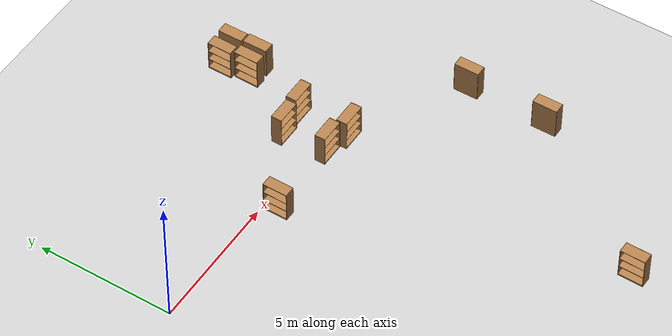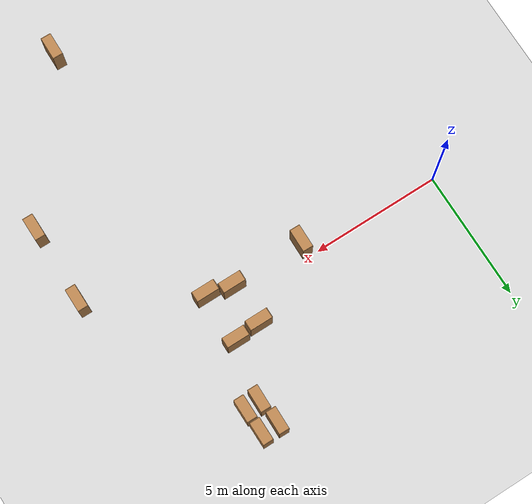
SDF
<sdf version="1.6">
 <world name="default">
  <model name="ground_plane">
   <static>1</static>
   <link name="link">
    <collision name="collision">
     <geometry><plane><normal>0 0 1</normal><size>100 100</size></plane></geometry>
     <surface>
      <contact><collide_bitmask>65535</collide_bitmask></contact>
      <friction><ode><mu>100</mu><mu2>50</mu2></ode></friction>
     </surface>
    </collision>
    <visual name="visual">
     <cast_shadows>0</cast_shadows>
     <geometry><plane><normal>0 0 1</normal><size>100 100</size></plane></geometry>
     <material>
      <script><uri>file://media/materials/scripts/gazebo.material</uri><name>Gazebo/Grey</name></script>
     </material>
    </visual>
   </link>
  </model>
  <model name="30x30env"><static>0</static><pose>32.1206 3.39752 0 0 -0 0</pose></model>
  <model name="bookshelf_clone_0_clone_clone_2_clone_2_clone_3_clone">
   <static>1</static>
   <link name="link">
    <inertial><mass>1</mass></inertial>
    <collision name="back">
     <pose>0 0.005 0.6 0 -0 0</pose>
     <geometry><box><size>0.9 0.01 1.2</size></box></geometry>
    </collision>
    <visual name="visual1">
     <pose>0 0.005 0.6 0 -0 0</pose>
     <geometry><box><size>0.9 0.01 1.2</size></box></geometry>
     <material>
      <script><uri>file://media/materials/scripts/gazebo.material</uri><name>Gazebo/Wood</name></script>
     </material>
    </visual>
    <collision name="left_side">
     <pose>0.45 -0.195 0.6 0 -0 0</pose>
     <geometry><box><size>0.02 0.4 1.2</size></box></geometry>
    </collision>
    <visual name="visual2">
     <pose>0.45 -0.195 0.6 0 -0 0</pose>
     <geometry><box><size>0.02 0.4 1.2</size></box></geometry>
     <material>
      <script><uri>file://media/materials/scripts/gazebo.material</uri><name>Gazebo/Wood</name></script>
     </material>
    </visual>
    <collision name="right_side">
     <pose>-0.45 -0.195 0.6 0 -0 0</pose>
     <geometry><box><size>0.02 0.4 1.2</size></box></geometry>
    </collision>
    <visual name="visual3">
     <pose>-0.45 -0.195 0.6 0 -0 0</pose>
     <geometry><box><size>0.02 0.4 1.2</size></box></geometry>
     <material>
      <script><uri>file://media/materials/scripts/gazebo.material</uri><name>Gazebo/Wood</name></script>
     </material>
    </visual>
    <collision name="bottom">
     <pose>0 -0.195 0.03 0 -0 0</pose>
     <geometry><box><size>0.88 0.4 0.06</size></box></geometry>
    </collision>
    <visual name="visual4">
     <pose>0 -0.195 0.03 0 -0 0</pose>
     <geometry><box><size>0.88 0.4 0.06</size></box></geometry>
     <material>
      <script><uri>file://media/materials/scripts/gazebo.material</uri><name>Gazebo/Wood</name></script>
     </material>
    </visual>
    <collision name="top">
     <pose>0 -0.195 1.19 0 -0 0</pose>
     <geometry><box><size>0.88 0.4 0.02</size></box></geometry>
    </collision>
    <visual name="visual5">
     <pose>0 -0.195 1.19 0 -0 0</pose>
     <geometry><box><size>0.88 0.4 0.02</size></box></geometry>
     <material>
      <script><uri>file://media/materials/scripts/gazebo.material</uri><name>Gazebo/Wood</name></script>
     </material>
    </visual>
    <collision name="low_shelf">
     <pose>0 -0.195 0.43 0 -0 0</pose>
     <geometry><box><size>0.88 0.4 0.02</size></box></geometry>
    </collision>
    <visual name="visual6">
     <pose>0 -0.195 0.43 0 -0 0</pose>
     <geometry><box><size>0.88 0.4 0.02</size></box></geometry>
     <material>
      <script><uri>file://media/materials/scripts/gazebo.material</uri><name>Gazebo/Wood</name></script>
     </material>
    </visual>
    <collision name="high_shelf">
     <pose>0 -0.195 0.8 0 -0 0</pose>
     <geometry><box><size>0.88 0.4 0.02</size></box></geometry>
    </collision>
    <visual name="visual7">
     <pose>0 -0.195 0.8 0 -0 0</pose>
     <geometry><box><size>0.88 0.4 0.02</size></box></geometry>
     <material>
      <script><uri>file://media/materials/scripts/gazebo.material</uri><name>Gazebo/Wood</name></script>
     </material>
    </visual>
   </link>
   <pose>10.0651 4.47508 0 0 -0 1.57201</pose>
  </model>
  <model name="bookshelf_clone_0_clone_clone_2_clone_2_clone_3_clone_0">
   <static>1</static>
   <link name="link">
    <inertial><mass>1</mass></inertial>
    <collision name="back">
     <pose>0 0.005 0.6 0 -0 0</pose>
     <geometry><box><size>0.9 0.01 1.2</size></box></geometry>
    </collision>
    <visual name="visual1">
     <pose>0 0.005 0.6 0 -0 0</pose>
     <geometry><box><size>0.9 0.01 1.2</size></box></geometry>
     <material>
      <script><uri>file://media/materials/scripts/gazebo.material</uri><name>Gazebo/Wood</name></script>
     </material>
    </visual>
    <collision name="left_side">
     <pose>0.45 -0.195 0.6 0 -0 0</pose>
     <geometry><box><size>0.02 0.4 1.2</size></box></geometry>
    </collision>
    <visual name="visual2">
     <pose>0.45 -0.195 0.6 0 -0 0</pose>
     <geometry><box><size>0.02 0.4 1.2</size></box></geometry>
     <material>
      <script><uri>file://media/materials/scripts/gazebo.material</uri><name>Gazebo/Wood</name></script>
     </material>
    </visual>
    <collision name="right_side">
     <pose>-0.45 -0.195 0.6 0 -0 0</pose>
     <geometry><box><size>0.02 0.4 1.2</size></box></geometry>
    </collision>
    <visual name="visual3">
     <pose>-0.45 -0.195 0.6 0 -0 0</pose>
     <geometry><box><size>0.02 0.4 1.2</size></box></geometry>
     <material>
      <script><uri>file://media/materials/scripts/gazebo.material</uri><name>Gazebo/Wood</name></script>
     </material>
    </visual>
    <collision name="bottom">
     <pose>0 -0.195 0.03 0 -0 0</pose>
     <geometry><box><size>0.88 0.4 0.06</size></box></geometry>
    </collision>
    <visual name="visual4">
     <pose>0 -0.195 0.03 0 -0 0</pose>
     <geometry><box><size>0.88 0.4 0.06</size></box></geometry>
     <material>
      <script><uri>file://media/materials/scripts/gazebo.material</uri><name>Gazebo/Wood</name></script>
     </material>
    </visual>
    <collision name="top">
     <pose>0 -0.195 1.19 0 -0 0</pose>
     <geometry><box><size>0.88 0.4 0.02</size></box></geometry>
    </collision>
    <visual name="visual5">
     <pose>0 -0.195 1.19 0 -0 0</pose>
     <geometry><box><size>0.88 0.4 0.02</size></box></geometry>
     <material>
      <script><uri>file://media/materials/scripts/gazebo.material</uri><name>Gazebo/Wood</name></script>
     </material>
    </visual>
    <collision name="low_shelf">
     <pose>0 -0.195 0.43 0 -0 0</pose>
     <geometry><box><size>0.88 0.4 0.02</size></box></geometry>
    </collision>
    <visual name="visual6">
     <pose>0 -0.195 0.43 0 -0 0</pose>
     <geometry><box><size>0.88 0.4 0.02</size></box></geometry>
     <material>
      <script><uri>file://media/materials/scripts/gazebo.material</uri><name>Gazebo/Wood</name></script>
     </material>
    </visual>
    <collision name="high_shelf">
     <pose>0 -0.195 0.8 0 -0 0</pose>
     <geometry><box><size>0.88 0.4 0.02</size></box></geometry>
    </collision>
    <visual name="visual7">
     <pose>0 -0.195 0.8 0 -0 0</pose>
     <geometry><box><size>0.88 0.4 0.02</size></box></geometry>
     <material>
      <script><uri>file://media/materials/scripts/gazebo.material</uri><name>Gazebo/Wood</name></script>
     </material>
    </visual>
   </link>
   <pose>9.78478 4.45442 0 0 0 -1.58271</pose>
  </model>
  <model name="bookshelf_clone_0_clone_clone_2_clone_2_clone_3_clone_clone">
   <static>1</static>
   <link name="link">
    <inertial><mass>1</mass></inertial>
    <collision name="back">
     <pose>0 0.005 0.6 0 -0 0</pose>
     <geometry><box><size>0.9 0.01 1.2</size></box></geometry>
    </collision>
    <visual name="visual1">
     <pose>0 0.005 0.6 0 -0 0</pose>
     <geometry><box><size>0.9 0.01 1.2</size></box></geometry>
     <material>
      <script><uri>file://media/materials/scripts/gazebo.material</uri><name>Gazebo/Wood</name></script>
     </material>
    </visual>
    <collision name="left_side">
     <pose>0.45 -0.195 0.6 0 -0 0</pose>
     <geometry><box><size>0.02 0.4 1.2</size></box></geometry>
    </collision>
    <visual name="visual2">
     <pose>0.45 -0.195 0.6 0 -0 0</pose>
     <geometry><box><size>0.02 0.4 1.2</size></box></geometry>
     <material>
      <script><uri>file://media/materials/scripts/gazebo.material</uri><name>Gazebo/Wood</name></script>
     </material>
    </visual>
    <collision name="right_side">
     <pose>-0.45 -0.195 0.6 0 -0 0</pose>
     <geometry><box><size>0.02 0.4 1.2</size></box></geometry>
    </collision>
    <visual name="visual3">
     <pose>-0.45 -0.195 0.6 0 -0 0</pose>
     <geometry><box><size>0.02 0.4 1.2</size></box></geometry>
     <material>
      <script><uri>file://media/materials/scripts/gazebo.material</uri><name>Gazebo/Wood</name></script>
     </material>
    </visual>
    <collision name="bottom">
     <pose>0 -0.195 0.03 0 -0 0</pose>
     <geometry><box><size>0.88 0.4 0.06</size></box></geometry>
    </collision>
    <visual name="visual4">
     <pose>0 -0.195 0.03 0 -0 0</pose>
     <geometry><box><size>0.88 0.4 0.06</size></box></geometry>
     <material>
      <script><uri>file://media/materials/scripts/gazebo.material</uri><name>Gazebo/Wood</name></script>
     </material>
    </visual>
    <collision name="top">
     <pose>0 -0.195 1.19 0 -0 0</pose>
     <geometry><box><size>0.88 0.4 0.02</size></box></geometry>
    </collision>
    <visual name="visual5">
     <pose>0 -0.195 1.19 0 -0 0</pose>
     <geometry><box><size>0.88 0.4 0.02</size></box></geometry>
     <material>
      <script><uri>file://media/materials/scripts/gazebo.material</uri><name>Gazebo/Wood</name></script>
     </material>
    </visual>
    <collision name="low_shelf">
     <pose>0 -0.195 0.43 0 -0 0</pose>
     <geometry><box><size>0.88 0.4 0.02</size></box></geometry>
    </collision>
    <visual name="visual6">
     <pose>0 -0.195 0.43 0 -0 0</pose>
     <geometry><box><size>0.88 0.4 0.02</size></box></geometry>
     <material>
      <script><uri>file://media/materials/scripts/gazebo.material</uri><name>Gazebo/Wood</name></script>
     </material>
    </visual>
    <collision name="high_shelf">
     <pose>0 -0.195 0.8 0 -0 0</pose>
     <geometry><box><size>0.88 0.4 0.02</size></box></geometry>
    </collision>
    <visual name="visual7">
     <pose>0 -0.195 0.8 0 -0 0</pose>
     <geometry><box><size>0.88 0.4 0.02</size></box></geometry>
     <material>
      <script><uri>file://media/materials/scripts/gazebo.material</uri><name>Gazebo/Wood</name></script>
     </material>
    </visual>
   </link>
   <pose>10.1123 3.51864 0 0 -0 1.57201</pose>
  </model>
  <model name="bookshelf_clone_0_clone_clone_2_clone_2_clone_3_clone_0_clone">
   <static>1</static>
   <link name="link">
    <inertial><mass>1</mass></inertial>
    <collision name="back">
     <pose>0 0.005 0.6 0 -0 0</pose>
     <geometry><box><size>0.9 0.01 1.2</size></box></geometry>
    </collision>
    <visual name="visual1">
     <pose>0 0.005 0.6 0 -0 0</pose>
     <geometry><box><size>0.9 0.01 1.2</size></box></geometry>
     <material>
      <script><uri>file://media/materials/scripts/gazebo.material</uri><name>Gazebo/Wood</name></script>
     </material>
    </visual>
    <collision name="left_side">
     <pose>0.45 -0.195 0.6 0 -0 0</pose>
     <geometry><box><size>0.02 0.4 1.2</size></box></geometry>
    </collision>
    <visual name="visual2">
     <pose>0.45 -0.195 0.6 0 -0 0</pose>
     <geometry><box><size>0.02 0.4 1.2</size></box></geometry>
     <material>
      <script><uri>file://media/materials/scripts/gazebo.material</uri><name>Gazebo/Wood</name></script>
     </material>
    </visual>
    <collision name="right_side">
     <pose>-0.45 -0.195 0.6 0 -0 0</pose>
     <geometry><box><size>0.02 0.4 1.2</size></box></geometry>
    </collision>
    <visual name="visual3">
     <pose>-0.45 -0.195 0.6 0 -0 0</pose>
     <geometry><box><size>0.02 0.4 1.2</size></box></geometry>
     <material>
      <script><uri>file://media/materials/scripts/gazebo.material</uri><name>Gazebo/Wood</name></script>
     </material>
    </visual>
    <collision name="bottom">
     <pose>0 -0.195 0.03 0 -0 0</pose>
     <geometry><box><size>0.88 0.4 0.06</size></box></geometry>
    </collision>
    <visual name="visual4">
     <pose>0 -0.195 0.03 0 -0 0</pose>
     <geometry><box><size>0.88 0.4 0.06</size></box></geometry>
     <material>
      <script><uri>file://media/materials/scripts/gazebo.material</uri><name>Gazebo/Wood</name></script>
     </material>
    </visual>
    <collision name="top">
     <pose>0 -0.195 1.19 0 -0 0</pose>
     <geometry><box><size>0.88 0.4 0.02</size></box></geometry>
    </collision>
    <visual name="visual5">
     <pose>0 -0.195 1.19 0 -0 0</pose>
     <geometry><box><size>0.88 0.4 0.02</size></box></geometry>
     <material>
      <script><uri>file://media/materials/scripts/gazebo.material</uri><name>Gazebo/Wood</name></script>
     </material>
    </visual>
    <collision name="low_shelf">
     <pose>0 -0.195 0.43 0 -0 0</pose>
     <geometry><box><size>0.88 0.4 0.02</size></box></geometry>
    </collision>
    <visual name="visual6">
     <pose>0 -0.195 0.43 0 -0 0</pose>
     <geometry><box><size>0.88 0.4 0.02</size></box></geometry>
     <material>
      <script><uri>file://media/materials/scripts/gazebo.material</uri><name>Gazebo/Wood</name></script>
     </material>
    </visual>
    <collision name="high_shelf">
     <pose>0 -0.195 0.8 0 -0 0</pose>
     <geometry><box><size>0.88 0.4 0.02</size></box></geometry>
    </collision>
    <visual name="visual7">
     <pose>0 -0.195 0.8 0 -0 0</pose>
     <geometry><box><size>0.88 0.4 0.02</size></box></geometry>
     <material>
      <script><uri>file://media/materials/scripts/gazebo.material</uri><name>Gazebo/Wood</name></script>
     </material>
    </visual>
   </link>
   <pose>9.90979 3.47613 0 0 0 -1.58271</pose>
  </model>
  <model name="bookshelf_clone_clone_clone_0_clone_0_clone_3_clone">
   <static>1</static>
   <link name="link">
    <inertial><mass>1</mass></inertial>
    <collision name="back">
     <pose>0 0.005 0.6 0 -0 0</pose>
     <geometry><box><size>0.9 0.01 1.2</size></box></geometry>
    </collision>
    <visual name="visual1">
     <pose>0 0.005 0.6 0 -0 0</pose>
     <geometry><box><size>0.9 0.01 1.2</size></box></geometry>
     <material>
      <script><uri>file://media/materials/scripts/gazebo.material</uri><name>Gazebo/Wood</name></script>
     </material>
    </visual>
    <collision name="left_side">
     <pose>0.45 -0.195 0.6 0 -0 0</pose>
     <geometry><box><size>0.02 0.4 1.2</size></box></geometry>
    </collision>
    <visual name="visual2">
     <pose>0.45 -0.195 0.6 0 -0 0</pose>
     <geometry><box><size>0.02 0.4 1.2</size></box></geometry>
     <material>
      <script><uri>file://media/materials/scripts/gazebo.material</uri><name>Gazebo/Wood</name></script>
     </material>
    </visual>
    <collision name="right_side">
     <pose>-0.45 -0.195 0.6 0 -0 0</pose>
     <geometry><box><size>0.02 0.4 1.2</size></box></geometry>
    </collision>
    <visual name="visual3">
     <pose>-0.45 -0.195 0.6 0 -0 0</pose>
     <geometry><box><size>0.02 0.4 1.2</size></box></geometry>
     <material>
      <script><uri>file://media/materials/scripts/gazebo.material</uri><name>Gazebo/Wood</name></script>
     </material>
    </visual>
    <collision name="bottom">
     <pose>0 -0.195 0.03 0 -0 0</pose>
     <geometry><box><size>0.88 0.4 0.06</size></box></geometry>
    </collision>
    <visual name="visual4">
     <pose>0 -0.195 0.03 0 -0 0</pose>
     <geometry><box><size>0.88 0.4 0.06</size></box></geometry>
     <material>
      <script><uri>file://media/materials/scripts/gazebo.material</uri><name>Gazebo/Wood</name></script>
     </material>
    </visual>
    <collision name="top">
     <pose>0 -0.195 1.19 0 -0 0</pose>
     <geometry><box><size>0.88 0.4 0.02</size></box></geometry>
    </collision>
    <visual name="visual5">
     <pose>0 -0.195 1.19 0 -0 0</pose>
     <geometry><box><size>0.88 0.4 0.02</size></box></geometry>
     <material>
      <script><uri>file://media/materials/scripts/gazebo.material</uri><name>Gazebo/Wood</name></script>
     </material>
    </visual>
    <collision name="low_shelf">
     <pose>0 -0.195 0.43 0 -0 0</pose>
     <geometry><box><size>0.88 0.4 0.02</size></box></geometry>
    </collision>
    <visual name="visual6">
     <pose>0 -0.195 0.43 0 -0 0</pose>
     <geometry><box><size>0.88 0.4 0.02</size></box></geometry>
     <material>
      <script><uri>file://media/materials/scripts/gazebo.material</uri><name>Gazebo/Wood</name></script>
     </material>
    </visual>
    <collision name="high_shelf">
     <pose>0 -0.195 0.8 0 -0 0</pose>
     <geometry><box><size>0.88 0.4 0.02</size></box></geometry>
    </collision>
    <visual name="visual7">
     <pose>0 -0.195 0.8 0 -0 0</pose>
     <geometry><box><size>0.88 0.4 0.02</size></box></geometry>
     <material>
      <script><uri>file://media/materials/scripts/gazebo.material</uri><name>Gazebo/Wood</name></script>
     </material>
    </visual>
   </link>
   <pose>9.24814 1.3976 0 0 -0 0</pose>
  </model>
  <model name="bookshelf_clone_clone_clone_0_clone_0_clone_3_clone_0">
   <static>1</static>
   <link name="link">
    <inertial><mass>1</mass></inertial>
    <collision name="back">
     <pose>0 0.005 0.6 0 -0 0</pose>
     <geometry><box><size>0.9 0.01 1.2</size></box></geometry>
    </collision>
    <visual name="visual1">
     <pose>0 0.005 0.6 0 -0 0</pose>
     <geometry><box><size>0.9 0.01 1.2</size></box></geometry>
     <material>
      <script><uri>file://media/materials/scripts/gazebo.material</uri><name>Gazebo/Wood</name></script>
     </material>
    </visual>
    <collision name="left_side">
     <pose>0.45 -0.195 0.6 0 -0 0</pose>
     <geometry><box><size>0.02 0.4 1.2</size></box></geometry>
    </collision>
    <visual name="visual2">
     <pose>0.45 -0.195 0.6 0 -0 0</pose>
     <geometry><box><size>0.02 0.4 1.2</size></box></geometry>
     <material>
      <script><uri>file://media/materials/scripts/gazebo.material</uri><name>Gazebo/Wood</name></script>
     </material>
    </visual>
    <collision name="right_side">
     <pose>-0.45 -0.195 0.6 0 -0 0</pose>
     <geometry><box><size>0.02 0.4 1.2</size></box></geometry>
    </collision>
    <visual name="visual3">
     <pose>-0.45 -0.195 0.6 0 -0 0</pose>
     <geometry><box><size>0.02 0.4 1.2</size></box></geometry>
     <material>
      <script><uri>file://media/materials/scripts/gazebo.material</uri><name>Gazebo/Wood</name></script>
     </material>
    </visual>
    <collision name="bottom">
     <pose>0 -0.195 0.03 0 -0 0</pose>
     <geometry><box><size>0.88 0.4 0.06</size></box></geometry>
    </collision>
    <visual name="visual4">
     <pose>0 -0.195 0.03 0 -0 0</pose>
     <geometry><box><size>0.88 0.4 0.06</size></box></geometry>
     <material>
      <script><uri>file://media/materials/scripts/gazebo.material</uri><name>Gazebo/Wood</name></script>
     </material>
    </visual>
    <collision name="top">
     <pose>0 -0.195 1.19 0 -0 0</pose>
     <geometry><box><size>0.88 0.4 0.02</size></box></geometry>
    </collision>
    <visual name="visual5">
     <pose>0 -0.195 1.19 0 -0 0</pose>
     <geometry><box><size>0.88 0.4 0.02</size></box></geometry>
     <material>
      <script><uri>file://media/materials/scripts/gazebo.material</uri><name>Gazebo/Wood</name></script>
     </material>
    </visual>
    <collision name="low_shelf">
     <pose>0 -0.195 0.43 0 -0 0</pose>
     <geometry><box><size>0.88 0.4 0.02</size></box></geometry>
    </collision>
    <visual name="visual6">
     <pose>0 -0.195 0.43 0 -0 0</pose>
     <geometry><box><size>0.88 0.4 0.02</size></box></geometry>
     <material>
      <script><uri>file://media/materials/scripts/gazebo.material</uri><name>Gazebo/Wood</name></script>
     </material>
    </visual>
    <collision name="high_shelf">
     <pose>0 -0.195 0.8 0 -0 0</pose>
     <geometry><box><size>0.88 0.4 0.02</size></box></geometry>
    </collision>
    <visual name="visual7">
     <pose>0 -0.195 0.8 0 -0 0</pose>
     <geometry><box><size>0.88 0.4 0.02</size></box></geometry>
     <material>
      <script><uri>file://media/materials/scripts/gazebo.material</uri><name>Gazebo/Wood</name></script>
     </material>
    </visual>
   </link>
   <pose>9.27582 -0.555469 0 0 -0 0</pose>
  </model>
  <model name="bookshelf_clone_clone_clone_0_clone_0_clone_3_clone_1">
   <static>1</static>
   <link name="link">
    <inertial><mass>1</mass></inertial>
    <collision name="back">
     <pose>0 0.005 0.6 0 -0 0</pose>
     <geometry><box><size>0.9 0.01 1.2</size></box></geometry>
    </collision>
    <visual name="visual1">
     <pose>0 0.005 0.6 0 -0 0</pose>
     <geometry><box><size>0.9 0.01 1.2</size></box></geometry>
     <material>
      <script><uri>file://media/materials/scripts/gazebo.material</uri><name>Gazebo/Wood</name></script>
     </material>
    </visual>
    <collision name="left_side">
     <pose>0.45 -0.195 0.6 0 -0 0</pose>
     <geometry><box><size>0.02 0.4 1.2</size></box></geometry>
    </collision>
    <visual name="visual2">
     <pose>0.45 -0.195 0.6 0 -0 0</pose>
     <geometry><box><size>0.02 0.4 1.2</size></box></geometry>
     <material>
      <script><uri>file://media/materials/scripts/gazebo.material</uri><name>Gazebo/Wood</name></script>
     </material>
    </visual>
    <collision name="right_side">
     <pose>-0.45 -0.195 0.6 0 -0 0</pose>
     <geometry><box><size>0.02 0.4 1.2</size></box></geometry>
    </collision>
    <visual name="visual3">
     <pose>-0.45 -0.195 0.6 0 -0 0</pose>
     <geometry><box><size>0.02 0.4 1.2</size></box></geometry>
     <material>
      <script><uri>file://media/materials/scripts/gazebo.material</uri><name>Gazebo/Wood</name></script>
     </material>
    </visual>
    <collision name="bottom">
     <pose>0 -0.195 0.03 0 -0 0</pose>
     <geometry><box><size>0.88 0.4 0.06</size></box></geometry>
    </collision>
    <visual name="visual4">
     <pose>0 -0.195 0.03 0 -0 0</pose>
     <geometry><box><size>0.88 0.4 0.06</size></box></geometry>
     <material>
      <script><uri>file://media/materials/scripts/gazebo.material</uri><name>Gazebo/Wood</name></script>
     </material>
    </visual>
    <collision name="top">
     <pose>0 -0.195 1.19 0 -0 0</pose>
     <geometry><box><size>0.88 0.4 0.02</size></box></geometry>
    </collision>
    <visual name="visual5">
     <pose>0 -0.195 1.19 0 -0 0</pose>
     <geometry><box><size>0.88 0.4 0.02</size></box></geometry>
     <material>
      <script><uri>file://media/materials/scripts/gazebo.material</uri><name>Gazebo/Wood</name></script>
     </material>
    </visual>
    <collision name="low_shelf">
     <pose>0 -0.195 0.43 0 -0 0</pose>
     <geometry><box><size>0.88 0.4 0.02</size></box></geometry>
    </collision>
    <visual name="visual6">
     <pose>0 -0.195 0.43 0 -0 0</pose>
     <geometry><box><size>0.88 0.4 0.02</size></box></geometry>
     <material>
      <script><uri>file://media/materials/scripts/gazebo.material</uri><name>Gazebo/Wood</name></script>
     </material>
    </visual>
    <collision name="high_shelf">
     <pose>0 -0.195 0.8 0 -0 0</pose>
     <geometry><box><size>0.88 0.4 0.02</size></box></geometry>
    </collision>
    <visual name="visual7">
     <pose>0 -0.195 0.8 0 -0 0</pose>
     <geometry><box><size>0.88 0.4 0.02</size></box></geometry>
     <material>
      <script><uri>file://media/materials/scripts/gazebo.material</uri><name>Gazebo/Wood</name></script>
     </material>
    </visual>
   </link>
   <pose>8.24441 1.31603 0 0 -0 0</pose>
  </model>
  <model name="bookshelf_clone_clone_clone_0_clone_0_clone_3_clone_2">
   <static>1</static>
   <link name="link">
    <inertial><mass>1</mass></inertial>
    <collision name="back">
     <pose>0 0.005 0.6 0 -0 0</pose>
     <geometry><box><size>0.9 0.01 1.2</size></box></geometry>
    </collision>
    <visual name="visual1">
     <pose>0 0.005 0.6 0 -0 0</pose>
     <geometry><box><size>0.9 0.01 1.2</size></box></geometry>
     <material>
      <script><uri>file://media/materials/scripts/gazebo.material</uri><name>Gazebo/Wood</name></script>
     </material>
    </visual>
    <collision name="left_side">
     <pose>0.45 -0.195 0.6 0 -0 0</pose>
     <geometry><box><size>0.02 0.4 1.2</size></box></geometry>
    </collision>
    <visual name="visual2">
     <pose>0.45 -0.195 0.6 0 -0 0</pose>
     <geometry><box><size>0.02 0.4 1.2</size></box></geometry>
     <material>
      <script><uri>file://media/materials/scripts/gazebo.material</uri><name>Gazebo/Wood</name></script>
     </material>
    </visual>
    <collision name="right_side">
     <pose>-0.45 -0.195 0.6 0 -0 0</pose>
     <geometry><box><size>0.02 0.4 1.2</size></box></geometry>
    </collision>
    <visual name="visual3">
     <pose>-0.45 -0.195 0.6 0 -0 0</pose>
     <geometry><box><size>0.02 0.4 1.2</size></box></geometry>
     <material>
      <script><uri>file://media/materials/scripts/gazebo.material</uri><name>Gazebo/Wood</name></script>
     </material>
    </visual>
    <collision name="bottom">
     <pose>0 -0.195 0.03 0 -0 0</pose>
     <geometry><box><size>0.88 0.4 0.06</size></box></geometry>
    </collision>
    <visual name="visual4">
     <pose>0 -0.195 0.03 0 -0 0</pose>
     <geometry><box><size>0.88 0.4 0.06</size></box></geometry>
     <material>
      <script><uri>file://media/materials/scripts/gazebo.material</uri><name>Gazebo/Wood</name></script>
     </material>
    </visual>
    <collision name="top">
     <pose>0 -0.195 1.19 0 -0 0</pose>
     <geometry><box><size>0.88 0.4 0.02</size></box></geometry>
    </collision>
    <visual name="visual5">
     <pose>0 -0.195 1.19 0 -0 0</pose>
     <geometry><box><size>0.88 0.4 0.02</size></box></geometry>
     <material>
      <script><uri>file://media/materials/scripts/gazebo.material</uri><name>Gazebo/Wood</name></script>
     </material>
    </visual>
    <collision name="low_shelf">
     <pose>0 -0.195 0.43 0 -0 0</pose>
     <geometry><box><size>0.88 0.4 0.02</size></box></geometry>
    </collision>
    <visual name="visual6">
     <pose>0 -0.195 0.43 0 -0 0</pose>
     <geometry><box><size>0.88 0.4 0.02</size></box></geometry>
     <material>
      <script><uri>file://media/materials/scripts/gazebo.material</uri><name>Gazebo/Wood</name></script>
     </material>
    </visual>
    <collision name="high_shelf">
     <pose>0 -0.195 0.8 0 -0 0</pose>
     <geometry><box><size>0.88 0.4 0.02</size></box></geometry>
    </collision>
    <visual name="visual7">
     <pose>0 -0.195 0.8 0 -0 0</pose>
     <geometry><box><size>0.88 0.4 0.02</size></box></geometry>
     <material>
      <script><uri>file://media/materials/scripts/gazebo.material</uri><name>Gazebo/Wood</name></script>
     </material>
    </visual>
   </link>
   <pose>8.32276 -0.324847 0 0 -0 0</pose>
  </model>
  <model name="bookshelf_clone_0_clone_clone_2_clone_2_clone_3_clone_clone_clone">
   <static>1</static>
   <link name="link">
    <inertial><mass>1</mass></inertial>
    <collision name="back">
     <pose>0 0.005 0.6 0 -0 0</pose>
     <geometry><box><size>0.9 0.01 1.2</size></box></geometry>
    </collision>
    <visual name="visual1">
     <pose>0 0.005 0.6 0 -0 0</pose>
     <geometry><box><size>0.9 0.01 1.2</size></box></geometry>
     <material>
      <script><uri>file://media/materials/scripts/gazebo.material</uri><name>Gazebo/Wood</name></script>
     </material>
    </visual>
    <collision name="left_side">
     <pose>0.45 -0.195 0.6 0 -0 0</pose>
     <geometry><box><size>0.02 0.4 1.2</size></box></geometry>
    </collision>
    <visual name="visual2">
     <pose>0.45 -0.195 0.6 0 -0 0</pose>
     <geometry><box><size>0.02 0.4 1.2</size></box></geometry>
     <material>
      <script><uri>file://media/materials/scripts/gazebo.material</uri><name>Gazebo/Wood</name></script>
     </material>
    </visual>
    <collision name="right_side">
     <pose>-0.45 -0.195 0.6 0 -0 0</pose>
     <geometry><box><size>0.02 0.4 1.2</size></box></geometry>
    </collision>
    <visual name="visual3">
     <pose>-0.45 -0.195 0.6 0 -0 0</pose>
     <geometry><box><size>0.02 0.4 1.2</size></box></geometry>
     <material>
      <script><uri>file://media/materials/scripts/gazebo.material</uri><name>Gazebo/Wood</name></script>
     </material>
    </visual>
    <collision name="bottom">
     <pose>0 -0.195 0.03 0 -0 0</pose>
     <geometry><box><size>0.88 0.4 0.06</size></box></geometry>
    </collision>
    <visual name="visual4">
     <pose>0 -0.195 0.03 0 -0 0</pose>
     <geometry><box><size>0.88 0.4 0.06</size></box></geometry>
     <material>
      <script><uri>file://media/materials/scripts/gazebo.material</uri><name>Gazebo/Wood</name></script>
     </material>
    </visual>
    <collision name="top">
     <pose>0 -0.195 1.19 0 -0 0</pose>
     <geometry><box><size>0.88 0.4 0.02</size></box></geometry>
    </collision>
    <visual name="visual5">
     <pose>0 -0.195 1.19 0 -0 0</pose>
     <geometry><box><size>0.88 0.4 0.02</size></box></geometry>
     <material>
      <script><uri>file://media/materials/scripts/gazebo.material</uri><name>Gazebo/Wood</name></script>
     </material>
    </visual>
    <collision name="low_shelf">
     <pose>0 -0.195 0.43 0 -0 0</pose>
     <geometry><box><size>0.88 0.4 0.02</size></box></geometry>
    </collision>
    <visual name="visual6">
     <pose>0 -0.195 0.43 0 -0 0</pose>
     <geometry><box><size>0.88 0.4 0.02</size></box></geometry>
     <material>
      <script><uri>file://media/materials/scripts/gazebo.material</uri><name>Gazebo/Wood</name></script>
     </material>
    </visual>
    <collision name="high_shelf">
     <pose>0 -0.195 0.8 0 -0 0</pose>
     <geometry><box><size>0.88 0.4 0.02</size></box></geometry>
    </collision>
    <visual name="visual7">
     <pose>0 -0.195 0.8 0 -0 0</pose>
     <geometry><box><size>0.88 0.4 0.02</size></box></geometry>
     <material>
      <script><uri>file://media/materials/scripts/gazebo.material</uri><name>Gazebo/Wood</name></script>
     </material>
    </visual>
   </link>
   <pose>13.0349 -2.96038 0 0 -0 1.57201</pose>
  </model>
  <model name="bookshelf_clone_0_clone_clone_2_clone_2_clone_3_clone_clone_clone_2">
   <static>1</static>
   <link name="link">
    <inertial><mass>1</mass></inertial>
    <collision name="back">
     <pose>0 0.005 0.6 0 -0 0</pose>
     <geometry><box><size>0.9 0.01 1.2</size></box></geometry>
    </collision>
    <visual name="visual1">
     <pose>0 0.005 0.6 0 -0 0</pose>
     <geometry><box><size>0.9 0.01 1.2</size></box></geometry>
     <material>
      <script><uri>file://media/materials/scripts/gazebo.material</uri><name>Gazebo/Wood</name></script>
     </material>
    </visual>
    <collision name="left_side">
     <pose>0.45 -0.195 0.6 0 -0 0</pose>
     <geometry><box><size>0.02 0.4 1.2</size></box></geometry>
    </collision>
    <visual name="visual2">
     <pose>0.45 -0.195 0.6 0 -0 0</pose>
     <geometry><box><size>0.02 0.4 1.2</size></box></geometry>
     <material>
      <script><uri>file://media/materials/scripts/gazebo.material</uri><name>Gazebo/Wood</name></script>
     </material>
    </visual>
    <collision name="right_side">
     <pose>-0.45 -0.195 0.6 0 -0 0</pose>
     <geometry><box><size>0.02 0.4 1.2</size></box></geometry>
    </collision>
    <visual name="visual3">
     <pose>-0.45 -0.195 0.6 0 -0 0</pose>
     <geometry><box><size>0.02 0.4 1.2</size></box></geometry>
     <material>
      <script><uri>file://media/materials/scripts/gazebo.material</uri><name>Gazebo/Wood</name></script>
     </material>
    </visual>
    <collision name="bottom">
     <pose>0 -0.195 0.03 0 -0 0</pose>
     <geometry><box><size>0.88 0.4 0.06</size></box></geometry>
    </collision>
    <visual name="visual4">
     <pose>0 -0.195 0.03 0 -0 0</pose>
     <geometry><box><size>0.88 0.4 0.06</size></box></geometry>
     <material>
      <script><uri>file://media/materials/scripts/gazebo.material</uri><name>Gazebo/Wood</name></script>
     </material>
    </visual>
    <collision name="top">
     <pose>0 -0.195 1.19 0 -0 0</pose>
     <geometry><box><size>0.88 0.4 0.02</size></box></geometry>
    </collision>
    <visual name="visual5">
     <pose>0 -0.195 1.19 0 -0 0</pose>
     <geometry><box><size>0.88 0.4 0.02</size></box></geometry>
     <material>
      <script><uri>file://media/materials/scripts/gazebo.material</uri><name>Gazebo/Wood</name></script>
     </material>
    </visual>
    <collision name="low_shelf">
     <pose>0 -0.195 0.43 0 -0 0</pose>
     <geometry><box><size>0.88 0.4 0.02</size></box></geometry>
    </collision>
    <visual name="visual6">
     <pose>0 -0.195 0.43 0 -0 0</pose>
     <geometry><box><size>0.88 0.4 0.02</size></box></geometry>
     <material>
      <script><uri>file://media/materials/scripts/gazebo.material</uri><name>Gazebo/Wood</name></script>
     </material>
    </visual>
    <collision name="high_shelf">
     <pose>0 -0.195 0.8 0 -0 0</pose>
     <geometry><box><size>0.88 0.4 0.02</size></box></geometry>
    </collision>
    <visual name="visual7">
     <pose>0 -0.195 0.8 0 -0 0</pose>
     <geometry><box><size>0.88 0.4 0.02</size></box></geometry>
     <material>
      <script><uri>file://media/materials/scripts/gazebo.material</uri><name>Gazebo/Wood</name></script>
     </material>
    </visual>
   </link>
   <pose>13.0014 -5.9757 0 0 -0 1.57201</pose>
  </model>
  <model name="bookshelf_clone_0_clone_clone_2_clone_2_clone_3_clone_clone_clone_2_clone">
   <static>1</static>
   <link name="link">
    <inertial><mass>1</mass></inertial>
    <collision name="back">
     <pose>0 0.005 0.6 0 -0 0</pose>
     <geometry><box><size>0.9 0.01 1.2</size></box></geometry>
    </collision>
    <visual name="visual1">
     <pose>0 0.005 0.6 0 -0 0</pose>
     <geometry><box><size>0.9 0.01 1.2</size></box></geometry>
     <material>
      <script><uri>file://media/materials/scripts/gazebo.material</uri><name>Gazebo/Wood</name></script>
     </material>
    </visual>
    <collision name="left_side">
     <pose>0.45 -0.195 0.6 0 -0 0</pose>
     <geometry><box><size>0.02 0.4 1.2</size></box></geometry>
    </collision>
    <visual name="visual2">
     <pose>0.45 -0.195 0.6 0 -0 0</pose>
     <geometry><box><size>0.02 0.4 1.2</size></box></geometry>
     <material>
      <script><uri>file://media/materials/scripts/gazebo.material</uri><name>Gazebo/Wood</name></script>
     </material>
    </visual>
    <collision name="right_side">
     <pose>-0.45 -0.195 0.6 0 -0 0</pose>
     <geometry><box><size>0.02 0.4 1.2</size></box></geometry>
    </collision>
    <visual name="visual3">
     <pose>-0.45 -0.195 0.6 0 -0 0</pose>
     <geometry><box><size>0.02 0.4 1.2</size></box></geometry>
     <material>
      <script><uri>file://media/materials/scripts/gazebo.material</uri><name>Gazebo/Wood</name></script>
     </material>
    </visual>
    <collision name="bottom">
     <pose>0 -0.195 0.03 0 -0 0</pose>
     <geometry><box><size>0.88 0.4 0.06</size></box></geometry>
    </collision>
    <visual name="visual4">
     <pose>0 -0.195 0.03 0 -0 0</pose>
     <geometry><box><size>0.88 0.4 0.06</size></box></geometry>
     <material>
      <script><uri>file://media/materials/scripts/gazebo.material</uri><name>Gazebo/Wood</name></script>
     </material>
    </visual>
    <collision name="top">
     <pose>0 -0.195 1.19 0 -0 0</pose>
     <geometry><box><size>0.88 0.4 0.02</size></box></geometry>
    </collision>
    <visual name="visual5">
     <pose>0 -0.195 1.19 0 -0 0</pose>
     <geometry><box><size>0.88 0.4 0.02</size></box></geometry>
     <material>
      <script><uri>file://media/materials/scripts/gazebo.material</uri><name>Gazebo/Wood</name></script>
     </material>
    </visual>
    <collision name="low_shelf">
     <pose>0 -0.195 0.43 0 -0 0</pose>
     <geometry><box><size>0.88 0.4 0.02</size></box></geometry>
    </collision>
    <visual name="visual6">
     <pose>0 -0.195 0.43 0 -0 0</pose>
     <geometry><box><size>0.88 0.4 0.02</size></box></geometry>
     <material>
      <script><uri>file://media/materials/scripts/gazebo.material</uri><name>Gazebo/Wood</name></script>
     </material>
    </visual>
    <collision name="high_shelf">
     <pose>0 -0.195 0.8 0 -0 0</pose>
     <geometry><box><size>0.88 0.4 0.02</size></box></geometry>
    </collision>
    <visual name="visual7">
     <pose>0 -0.195 0.8 0 -0 0</pose>
     <geometry><box><size>0.88 0.4 0.02</size></box></geometry>
     <material>
      <script><uri>file://media/materials/scripts/gazebo.material</uri><name>Gazebo/Wood</name></script>
     </material>
    </visual>
   </link>
   <pose>9.38373 -11.5041 0 0 0 -1.58598</pose>
  </model>
  <model name="bookshelf_clone_0_clone_clone_2_clone_2_clone_3_clone_0_clone_clone">
   <static>1</static>
   <link name="link">
    <inertial><mass>1</mass></inertial>
    <collision name="back">
     <pose>0 0.005 0.6 0 -0 0</pose>
     <geometry><box><size>0.9 0.01 1.2</size></box></geometry>
    </collision>
    <visual name="visual1">
     <pose>0 0.005 0.6 0 -0 0</pose>
     <geometry><box><size>0.9 0.01 1.2</size></box></geometry>
     <material>
      <script><uri>file://media/materials/scripts/gazebo.material</uri><name>Gazebo/Wood</name></script>
     </material>
    </visual>
    <collision name="left_side">
     <pose>0.45 -0.195 0.6 0 -0 0</pose>
     <geometry><box><size>0.02 0.4 1.2</size></box></geometry>
    </collision>
    <visual name="visual2">
     <pose>0.45 -0.195 0.6 0 -0 0</pose>
     <geometry><box><size>0.02 0.4 1.2</size></box></geometry>
     <material>
      <script><uri>file://media/materials/scripts/gazebo.material</uri><name>Gazebo/Wood</name></script>
     </material>
    </visual>
    <collision name="right_side">
     <pose>-0.45 -0.195 0.6 0 -0 0</pose>
     <geometry><box><size>0.02 0.4 1.2</size></box></geometry>
    </collision>
    <visual name="visual3">
     <pose>-0.45 -0.195 0.6 0 -0 0</pose>
     <geometry><box><size>0.02 0.4 1.2</size></box></geometry>
     <material>
      <script><uri>file://media/materials/scripts/gazebo.material</uri><name>Gazebo/Wood</name></script>
     </material>
    </visual>
    <collision name="bottom">
     <pose>0 -0.195 0.03 0 -0 0</pose>
     <geometry><box><size>0.88 0.4 0.06</size></box></geometry>
    </collision>
    <visual name="visual4">
     <pose>0 -0.195 0.03 0 -0 0</pose>
     <geometry><box><size>0.88 0.4 0.06</size></box></geometry>
     <material>
      <script><uri>file://media/materials/scripts/gazebo.material</uri><name>Gazebo/Wood</name></script>
     </material>
    </visual>
    <collision name="top">
     <pose>0 -0.195 1.19 0 -0 0</pose>
     <geometry><box><size>0.88 0.4 0.02</size></box></geometry>
    </collision>
    <visual name="visual5">
     <pose>0 -0.195 1.19 0 -0 0</pose>
     <geometry><box><size>0.88 0.4 0.02</size></box></geometry>
     <material>
      <script><uri>file://media/materials/scripts/gazebo.material</uri><name>Gazebo/Wood</name></script>
     </material>
    </visual>
    <collision name="low_shelf">
     <pose>0 -0.195 0.43 0 -0 0</pose>
     <geometry><box><size>0.88 0.4 0.02</size></box></geometry>
    </collision>
    <visual name="visual6">
     <pose>0 -0.195 0.43 0 -0 0</pose>
     <geometry><box><size>0.88 0.4 0.02</size></box></geometry>
     <material>
      <script><uri>file://media/materials/scripts/gazebo.material</uri><name>Gazebo/Wood</name></script>
     </material>
    </visual>
    <collision name="high_shelf">
     <pose>0 -0.195 0.8 0 -0 0</pose>
     <geometry><box><size>0.88 0.4 0.02</size></box></geometry>
    </collision>
    <visual name="visual7">
     <pose>0 -0.195 0.8 0 -0 0</pose>
     <geometry><box><size>0.88 0.4 0.02</size></box></geometry>
     <material>
      <script><uri>file://media/materials/scripts/gazebo.material</uri><name>Gazebo/Wood</name></script>
     </material>
    </visual>
   </link>
   <pose>5.59819 -0.52454 0 0 0 -1.58271</pose>
  </model>
 </world>
</sdf>
